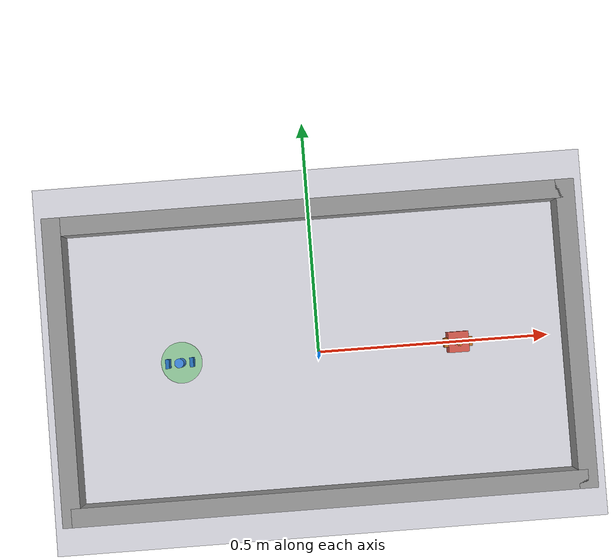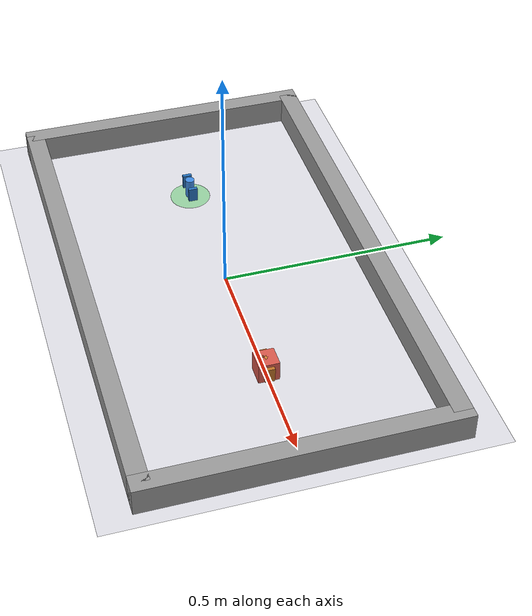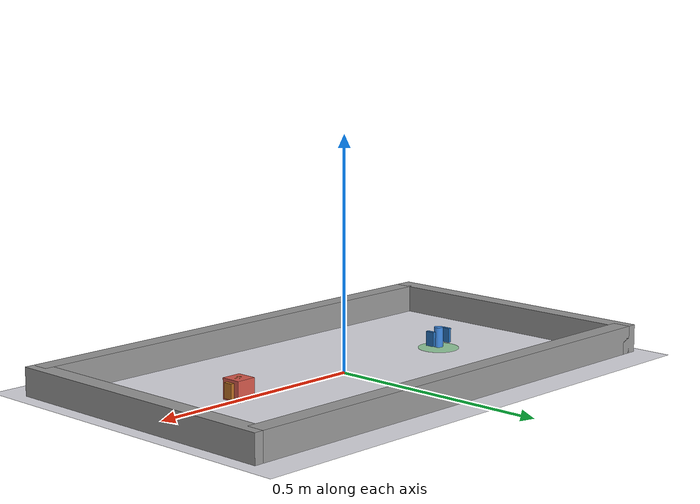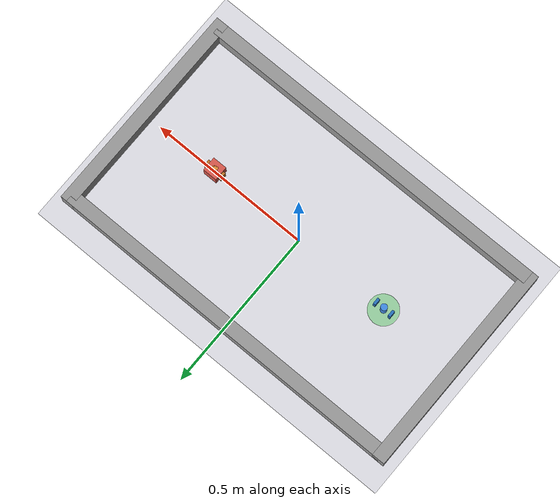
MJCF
<mujoco model="aloha_cube">
  <option timestep="0.01" integrator="implicitfast"/>

  <visual>
    <headlight ambient="0.45 0.45 0.45" diffuse="0.6 0.6 0.6" specular="0.1 0.1 0.1"/>
    <global offwidth="640" offheight="640"/>
  </visual>

  <asset>
    <texture name="grid" type="2d" builtin="checker" rgb1="0.92 0.92 0.94" rgb2="0.83 0.83 0.87"
             width="256" height="256"/>
    <material name="table_mat" texture="grid" texrepeat="12 8" reflectance="0"/>
  </asset>

  <worldbody>
    <camera name="top" pos="0 0 1.3" quat="1 0 0 0" fovy="52"/>

    <!-- visual-only table plane at z=0 (nothing collides with it) -->
    <geom name="table" type="plane" size="0.6 0.4 0.1" material="table_mat"
          contype="0" conaffinity="0"/>

    <!-- workspace walls (collide with the cube; grippers pass through) -->
    <geom name="wall_n" type="box" pos="0  0.31 0.03" size="0.55 0.02 0.03" rgba="0.6 0.6 0.6 1"/>
    <geom name="wall_s" type="box" pos="0 -0.31 0.03" size="0.55 0.02 0.03" rgba="0.6 0.6 0.6 1"/>
    <geom name="wall_e" type="box" pos=" 0.55 0 0.03" size="0.02 0.33 0.03" rgba="0.6 0.6 0.6 1"/>
    <geom name="wall_w" type="box" pos="-0.55 0 0.03" size="0.02 0.33 0.03" rgba="0.6 0.6 0.6 1"/>

    <!-- fixed delivery target (visual only), in the LEFT arm's exclusive reach -->
    <body name="target" pos="-0.30 0 0.0005">
      <geom name="target_pad" type="cylinder" size="0.045 0.0005" pos="0 0 0"
            rgba="0.35 0.8 0.4 0.5" contype="0" conaffinity="0"/>
    </body>

    <!-- transfer cube: slide-x, slide-y planar joint (quasi-static). -->
    <body name="cube" pos="0.30 0 0.025">
      <joint name="cube_x" type="slide" axis="1 0 0" damping="4" frictionloss="1.2"/>
      <joint name="cube_y" type="slide" axis="0 1 0" damping="4" frictionloss="1.2"/>
      <geom name="cube_geom" type="box" size="0.022 0.022 0.022"
            rgba="0.85 0.35 0.30 1" mass="0.05"/>
    </body>

    <!-- RIGHT arm: end-effector on two actuated slides + a 1-DOF gripper.
         x range keeps it out of the target zone (x >= -0.05). -->
    <body name="right_ee" pos="0.30 0 0.025">
      <!-- ranges are joint-local (displacement from the body home at x=+0.30);
           qpos in [-0.35, 0.15] => world x in [-0.05, 0.45] (out of target zone) -->
      <joint name="right_x" type="slide" axis="1 0 0" range="-0.35 0.15" damping="0.5"/>
      <joint name="right_y" type="slide" axis="0 1 0" range="-0.28 0.28" damping="0.5"/>
      <geom name="right_palm" type="cylinder" size="0.010 0.022" rgba="0.90 0.55 0.20 1"
            mass="0.2" contype="0" conaffinity="0"/>
      <!-- fixed jaw + moving finger: grip qpos 0 = open, 0.04 = closed -->
      <geom name="right_jaw_fixed" type="box" size="0.004 0.010 0.016" pos="0.026 0 0"
            rgba="0.75 0.45 0.15 1" contype="0" conaffinity="0"/>
      <body name="right_finger" pos="0 0 0">
        <joint name="right_grip" type="slide" axis="1 0 0" range="0 0.04" damping="1"/>
        <geom name="right_finger_geom" type="box" size="0.004 0.010 0.016" pos="-0.026 0 0"
              rgba="0.75 0.45 0.15 1" contype="0" conaffinity="0"/>
      </body>
    </body>

    <!-- LEFT arm: mirror of the right; x range keeps it out of the cube zone
         (x <= 0.05). Homes on the left. -->
    <body name="left_ee" pos="-0.30 0 0.025">
      <!-- joint-local ranges: qpos in [-0.15, 0.35] => world x in [-0.45, 0.05]
           (out of the cube-spawn zone) -->
      <joint name="left_x" type="slide" axis="1 0 0" range="-0.15 0.35" damping="0.5"/>
      <joint name="left_y" type="slide" axis="0 1 0" range="-0.28 0.28" damping="0.5"/>
      <geom name="left_palm" type="cylinder" size="0.010 0.022" rgba="0.25 0.55 0.90 1"
            mass="0.2" contype="0" conaffinity="0"/>
      <geom name="left_jaw_fixed" type="box" size="0.004 0.010 0.016" pos="-0.026 0 0"
            rgba="0.15 0.45 0.75 1" contype="0" conaffinity="0"/>
      <body name="left_finger" pos="0 0 0">
        <joint name="left_grip" type="slide" axis="1 0 0" range="-0.04 0" damping="1"/>
        <geom name="left_finger_geom" type="box" size="0.004 0.010 0.016" pos="0.026 0 0"
              rgba="0.15 0.45 0.75 1" contype="0" conaffinity="0"/>
      </body>
    </body>
  </worldbody>

  <actuator>
    <!-- arm end-effector target velocities [m/s], clipped to [-1, 1] -->
    <velocity name="right_vx" joint="right_x" kv="20" ctrlrange="-1 1" forcerange="-30 30"/>
    <velocity name="right_vy" joint="right_y" kv="20" ctrlrange="-1 1" forcerange="-30 30"/>
    <velocity name="left_vx"  joint="left_x"  kv="20" ctrlrange="-1 1" forcerange="-30 30"/>
    <velocity name="left_vy"  joint="left_y"  kv="20" ctrlrange="-1 1" forcerange="-30 30"/>
    <!-- gripper position targets: ctrl is the finger displacement [m] -->
    <position name="right_grip_act" joint="right_grip" kp="120" ctrlrange="0 0.04" forcerange="-40 40"/>
    <position name="left_grip_act"  joint="left_grip"  kp="120" ctrlrange="-0.04 0" forcerange="-40 40"/>
  </actuator>

  <equality>
    <!-- grasp abstraction: env toggles these on/off deterministically. -->
    <weld name="right_hold" body1="right_ee" body2="cube" active="false"/>
    <weld name="left_hold"  body1="left_ee"  body2="cube" active="false"/>
  </equality>
</mujoco>
